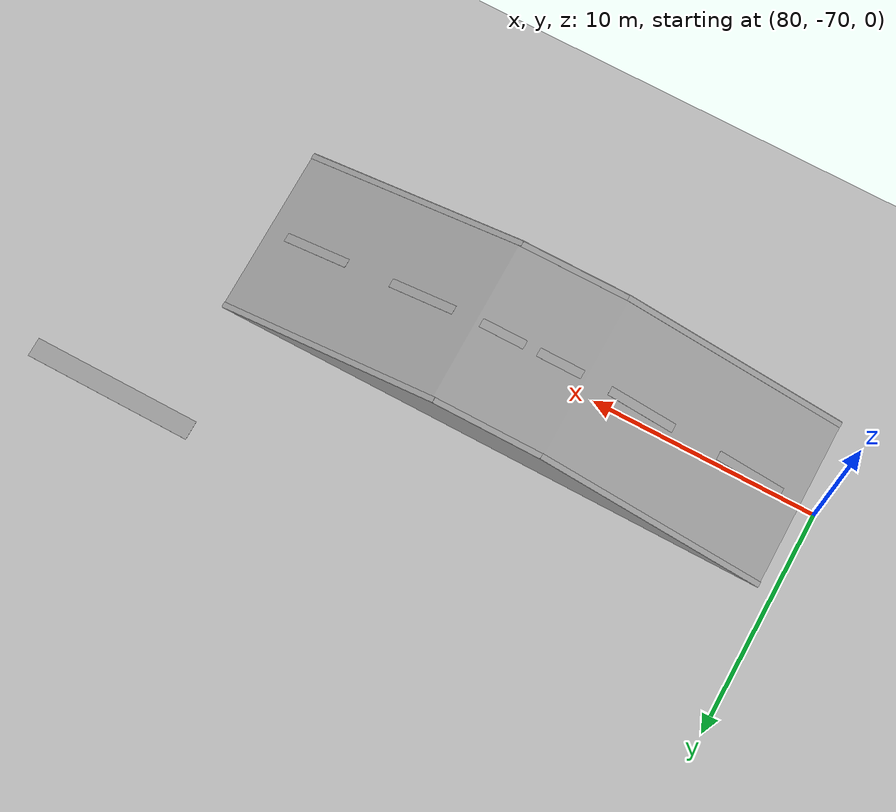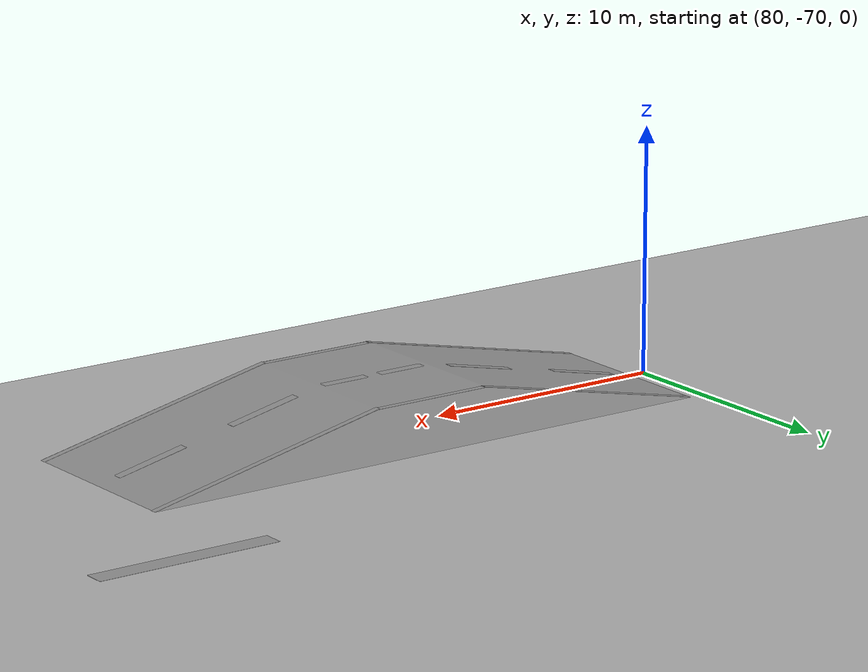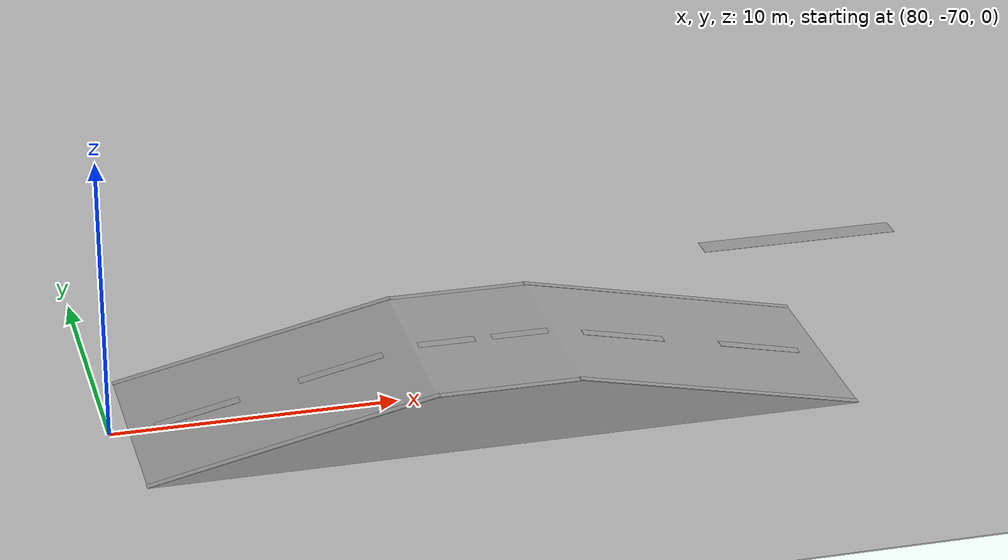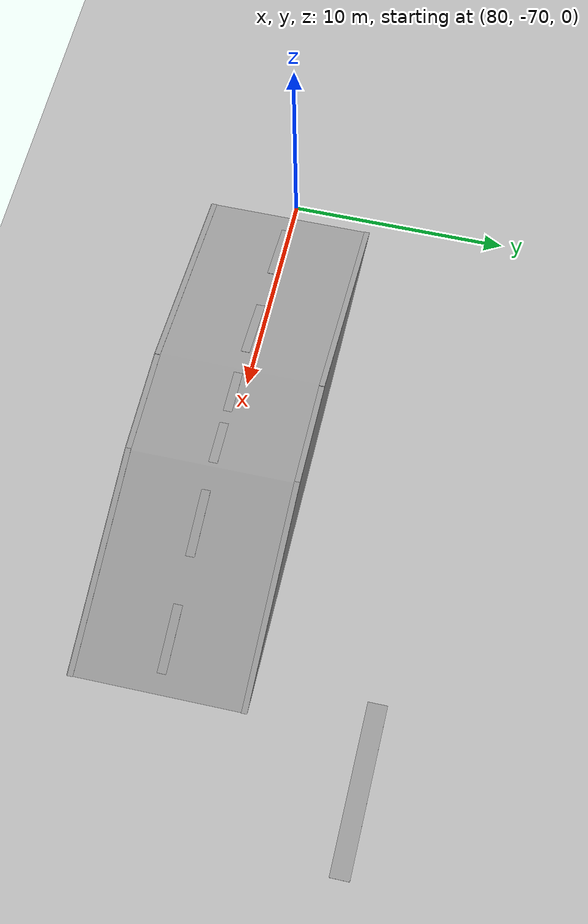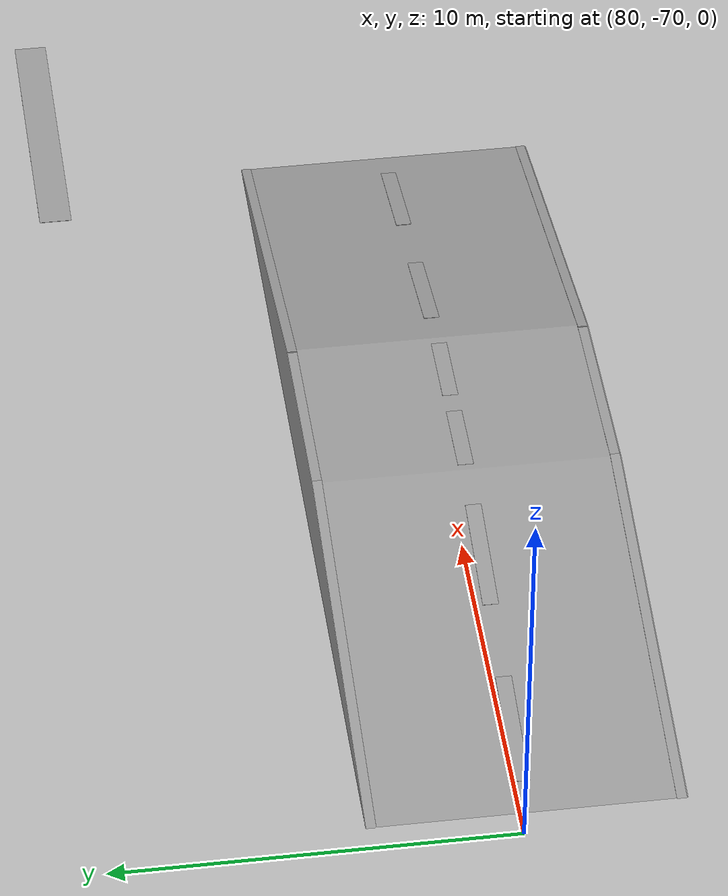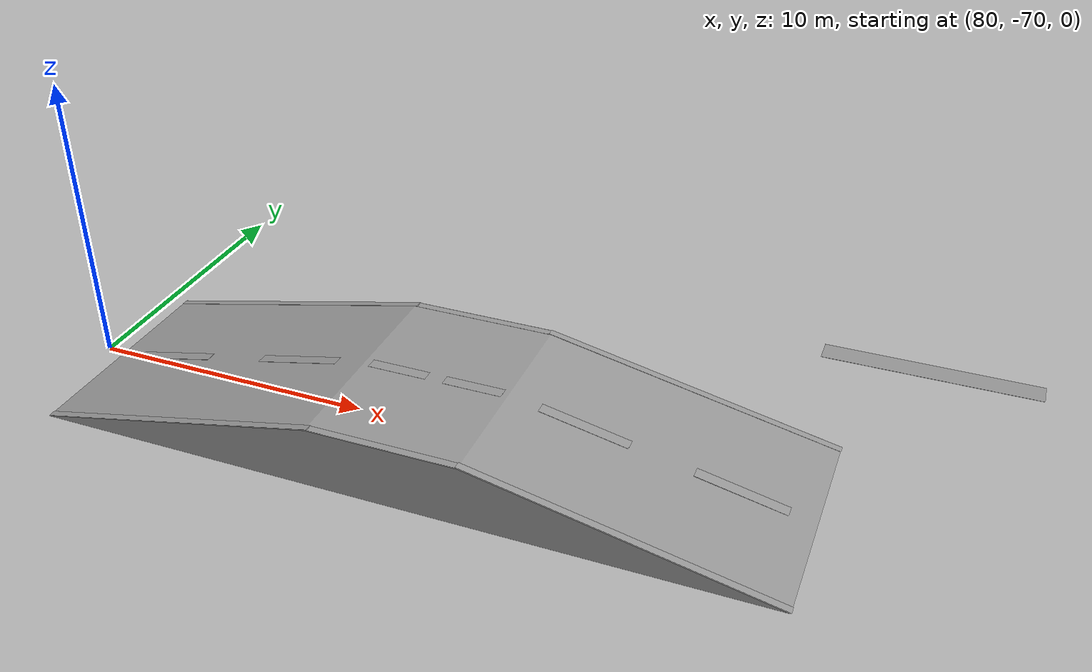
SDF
<sdf version="1.7">
 <world name="default">
  <model name="ground">
   <pose>75 -41.8 0 0 -0 1.57</pose>
   <static>1</static>
   <link name="ground">
    <collision name="ground_coll"><geometry><box><size>83.6 150 0.05</size></box></geometry></collision>
    <visual name="ground_vis">
     <geometry><box><size>83.6 150 0.05</size></box></geometry>
     <material>
      <script>
       <uri>/home/bluevery8/workspace/oom_ws/install/ros2_term_project/share/ros2_term_project/worlds/./course.material</uri>
       <name>course</name>
      </script>
     </material>
    </visual>
   </link>
  </model>
  <model name="Hill">
   <link name="hill_model">
    <inertial>
     <mass>100</mass>
     <inertia>
      <ixx>0.166667</ixx>
      <ixy>0</ixy>
      <ixz>0</ixz>
      <iyy>0.166667</iyy>
      <iyz>0</iyz>
      <izz>0.166667</izz>
     </inertia>
    </inertial>
    <pose>8e-06 -3.4e-05 -0.020001 0 -0 0</pose>
    <self_collide>1</self_collide>
    <gravity>0</gravity>
    <visual name="visual">
     <geometry>
      <mesh>
       <uri>/home/bluevery8/workspace/oom_ws/src/ros2_term_project/3dfile/언덕구간.stl</uri>
       <scale>0.1 0.26 0.2</scale>
      </mesh>
     </geometry>
     <material>
      <lighting>1</lighting>
      <script><uri>file://media/materials/scripts/gazebo.material</uri><name>Gazebo/Grey</name></script>
      <shader type="pixel"><normal_map>__default__</normal_map></shader>
      <ambient>0.3 0.3 0.3 1</ambient>
      <diffuse>0.7 0.7 0.7 1</diffuse>
      <specular>0.01 0.01 0.01 1</specular>
      <emissive>0 0 0 1</emissive>
     </material>
    </visual>
    <collision name="collision">
     <geometry>
      <mesh>
       <uri>/home/bluevery8/workspace/oom_ws/src/ros2_term_project/3dfile/언덕구간.stl</uri>
       <scale>0.1 0.26 0.2</scale>
      </mesh>
     </geometry>
     <surface>
      <friction>
       <ode><mu>1</mu><mu2>1</mu2><fdir1>0 0 0</fdir1><slip1>0</slip1><slip2>0</slip2></ode>
       <torsional>
        <coefficient>1</coefficient>
        <patch_radius>0</patch_radius>
        <surface_radius>0</surface_radius>
        <use_patch_radius>1</use_patch_radius>
        <ode><slip>0</slip></ode>
       </torsional>
      </friction>
      <bounce><restitution_coefficient>0</restitution_coefficient><threshold>1e+06</threshold></bounce>
      <contact>
       <collide_without_contact>0</collide_without_contact>
       <collide_without_contact_bitmask>1</collide_without_contact_bitmask>
       <collide_bitmask>1</collide_bitmask>
       <ode>
        <soft_cfm>0</soft_cfm>
        <soft_erp>0.2</soft_erp>
        <kp>1e+13</kp>
        <kd>1</kd>
        <max_vel>0.01</max_vel>
        <min_depth>0</min_depth>
       </ode>
       <bullet>
        <split_impulse>1</split_impulse>
        <split_impulse_penetration_threshold>-0.01</split_impulse_penetration_threshold>
        <soft_cfm>0</soft_cfm>
        <soft_erp>0.2</soft_erp>
        <kp>1e+13</kp>
        <kd>1</kd>
       </bullet>
      </contact>
     </surface>
    </collision>
   </link>
   <link name="hill_center_line_1">
    <inertial>
     <mass>1</mass>
     <inertia>
      <ixx>0.166667</ixx>
      <ixy>0</ixy>
      <ixz>0</ixz>
      <iyy>0.166667</iyy>
      <iyz>0</iyz>
      <izz>0.166667</izz>
     </inertia>
    </inertial>
    <pose>-4.5 -9.1 0.5 0 -0.212 0</pose>
    <self_collide>1</self_collide>
    <visual name="visual">
     <geometry><box><size>3 0.4 0.05</size></box></geometry>
     <material>
      <lighting>1</lighting>
      <script><uri>file://media/materials/scripts/gazebo.material</uri><name>Gazebo/Grey</name></script>
      <shader type="pixel"><normal_map>__default__</normal_map></shader>
      <ambient>1 1 1 1</ambient>
      <diffuse>1 1 1 1</diffuse>
      <specular>1 1 1 1</specular>
      <emissive>1 1 1 1</emissive>
     </material>
    </visual>
    <collision name="collision">
     <geometry><box><size>0 0 0</size></box></geometry>
     <surface>
      <friction>
       <ode><mu>1</mu><mu2>1</mu2><fdir1>0 0 0</fdir1><slip1>0</slip1><slip2>0</slip2></ode>
       <torsional>
        <coefficient>1</coefficient>
        <patch_radius>0</patch_radius>
        <surface_radius>0</surface_radius>
        <use_patch_radius>1</use_patch_radius>
        <ode><slip>0</slip></ode>
       </torsional>
      </friction>
      <bounce><restitution_coefficient>0</restitution_coefficient><threshold>1e+06</threshold></bounce>
      <contact>
       <collide_without_contact>0</collide_without_contact>
       <collide_without_contact_bitmask>1</collide_without_contact_bitmask>
       <collide_bitmask>1</collide_bitmask>
       <ode>
        <soft_cfm>0</soft_cfm>
        <soft_erp>0.2</soft_erp>
        <kp>1e+13</kp>
        <kd>1</kd>
        <max_vel>0.01</max_vel>
        <min_depth>0</min_depth>
       </ode>
       <bullet>
        <split_impulse>1</split_impulse>
        <split_impulse_penetration_threshold>-0.01</split_impulse_penetration_threshold>
        <soft_cfm>0</soft_cfm>
        <soft_erp>0.2</soft_erp>
        <kp>1e+13</kp>
        <kd>1</kd>
       </bullet>
      </contact>
     </surface>
    </collision>
   </link>
   <link name="hill_center_line_2">
    <inertial>
     <mass>1</mass>
     <inertia>
      <ixx>0.166667</ixx>
      <ixy>0</ixy>
      <ixz>0</ixz>
      <iyy>0.166667</iyy>
      <iyz>0</iyz>
      <izz>0.166667</izz>
     </inertia>
    </inertial>
    <pose>0.5 -9.1 1.57 0 -0.212 0</pose>
    <self_collide>1</self_collide>
    <visual name="visual">
     <geometry><box><size>3 0.4 0.05</size></box></geometry>
     <material>
      <lighting>1</lighting>
      <script><uri>file://media/materials/scripts/gazebo.material</uri><name>Gazebo/Grey</name></script>
      <shader type="pixel"><normal_map>__default__</normal_map></shader>
      <ambient>1 1 1 1</ambient>
      <diffuse>1 1 1 1</diffuse>
      <specular>1 1 1 1</specular>
      <emissive>1 1 1 1</emissive>
     </material>
    </visual>
    <collision name="collision">
     <geometry><box><size>0 0 0</size></box></geometry>
     <surface>
      <friction>
       <ode><mu>1</mu><mu2>1</mu2><fdir1>0 0 0</fdir1><slip1>0</slip1><slip2>0</slip2></ode>
       <torsional>
        <coefficient>1</coefficient>
        <patch_radius>0</patch_radius>
        <surface_radius>0</surface_radius>
        <use_patch_radius>1</use_patch_radius>
        <ode><slip>0</slip></ode>
       </torsional>
      </friction>
      <bounce><restitution_coefficient>0</restitution_coefficient><threshold>1e+06</threshold></bounce>
      <contact>
       <collide_without_contact>0</collide_without_contact>
       <collide_without_contact_bitmask>1</collide_without_contact_bitmask>
       <collide_bitmask>1</collide_bitmask>
       <ode>
        <soft_cfm>0</soft_cfm>
        <soft_erp>0.2</soft_erp>
        <kp>1e+13</kp>
        <kd>1</kd>
        <max_vel>0.01</max_vel>
        <min_depth>0</min_depth>
       </ode>
       <bullet>
        <split_impulse>1</split_impulse>
        <split_impulse_penetration_threshold>-0.01</split_impulse_penetration_threshold>
        <soft_cfm>0</soft_cfm>
        <soft_erp>0.2</soft_erp>
        <kp>1e+13</kp>
        <kd>1</kd>
       </bullet>
      </contact>
     </surface>
    </collision>
   </link>
   <link name="hill_center_line_down_1">
    <inertial>
     <mass>1</mass>
     <inertia>
      <ixx>0.166667</ixx>
      <ixy>0</ixy>
      <ixz>0</ixz>
      <iyy>0.166667</iyy>
      <iyz>0</iyz>
      <izz>0.166667</izz>
     </inertia>
    </inertial>
    <pose>10.5 -9.1 1.57 0 0.212 0</pose>
    <self_collide>1</self_collide>
    <visual name="visual">
     <geometry><box><size>3 0.4 0.05</size></box></geometry>
     <material>
      <lighting>1</lighting>
      <script><uri>file://media/materials/scripts/gazebo.material</uri><name>Gazebo/Grey</name></script>
      <shader type="pixel"><normal_map>__default__</normal_map></shader>
      <ambient>1 1 1 1</ambient>
      <diffuse>1 1 1 1</diffuse>
      <specular>1 1 1 1</specular>
      <emissive>1 1 1 1</emissive>
     </material>
    </visual>
    <collision name="collision">
     <geometry><box><size>0 0 0</size></box></geometry>
     <surface>
      <friction>
       <ode><mu>1</mu><mu2>1</mu2><fdir1>0 0 0</fdir1><slip1>0</slip1><slip2>0</slip2></ode>
       <torsional>
        <coefficient>1</coefficient>
        <patch_radius>0</patch_radius>
        <surface_radius>0</surface_radius>
        <use_patch_radius>1</use_patch_radius>
        <ode><slip>0</slip></ode>
       </torsional>
      </friction>
      <bounce><restitution_coefficient>0</restitution_coefficient><threshold>1e+06</threshold></bounce>
      <contact>
       <collide_without_contact>0</collide_without_contact>
       <collide_without_contact_bitmask>1</collide_without_contact_bitmask>
       <collide_bitmask>1</collide_bitmask>
       <ode>
        <soft_cfm>0</soft_cfm>
        <soft_erp>0.2</soft_erp>
        <kp>1e+13</kp>
        <kd>1</kd>
        <max_vel>0.01</max_vel>
        <min_depth>0</min_depth>
       </ode>
       <bullet>
        <split_impulse>1</split_impulse>
        <split_impulse_penetration_threshold>-0.01</split_impulse_penetration_threshold>
        <soft_cfm>0</soft_cfm>
        <soft_erp>0.2</soft_erp>
        <kp>1e+13</kp>
        <kd>1</kd>
       </bullet>
      </contact>
     </surface>
    </collision>
   </link>
   <link name="hill_center_line_down_2">
    <inertial>
     <mass>1</mass>
     <inertia>
      <ixx>0.166667</ixx>
      <ixy>0</ixy>
      <ixz>0</ixz>
      <iyy>0.166667</iyy>
      <iyz>0</iyz>
      <izz>0.166667</izz>
     </inertia>
    </inertial>
    <pose>15.5 -9.1 0.5 0 0.215 0</pose>
    <self_collide>1</self_collide>
    <visual name="visual">
     <geometry><box><size>3 0.4 0.05</size></box></geometry>
     <material>
      <lighting>1</lighting>
      <script><uri>file://media/materials/scripts/gazebo.material</uri><name>Gazebo/Grey</name></script>
      <shader type="pixel"><normal_map>__default__</normal_map></shader>
      <ambient>1 1 1 1</ambient>
      <diffuse>1 1 1 1</diffuse>
      <specular>1 1 1 1</specular>
      <emissive>1 1 1 1</emissive>
     </material>
    </visual>
    <collision name="collision">
     <geometry><box><size>0 0 0</size></box></geometry>
     <surface>
      <friction>
       <ode><mu>1</mu><mu2>1</mu2><fdir1>0 0 0</fdir1><slip1>0</slip1><slip2>0</slip2></ode>
       <torsional>
        <coefficient>1</coefficient>
        <patch_radius>0</patch_radius>
        <surface_radius>0</surface_radius>
        <use_patch_radius>1</use_patch_radius>
        <ode><slip>0</slip></ode>
       </torsional>
      </friction>
      <bounce><restitution_coefficient>0</restitution_coefficient><threshold>1e+06</threshold></bounce>
      <contact>
       <collide_without_contact>0</collide_without_contact>
       <collide_without_contact_bitmask>1</collide_without_contact_bitmask>
       <collide_bitmask>1</collide_bitmask>
       <ode>
        <soft_cfm>0</soft_cfm>
        <soft_erp>0.2</soft_erp>
        <kp>1e+13</kp>
        <kd>1</kd>
        <max_vel>0.01</max_vel>
        <min_depth>0</min_depth>
       </ode>
       <bullet>
        <split_impulse>1</split_impulse>
        <split_impulse_penetration_threshold>-0.01</split_impulse_penetration_threshold>
        <soft_cfm>0</soft_cfm>
        <soft_erp>0.2</soft_erp>
        <kp>1e+13</kp>
        <kd>1</kd>
       </bullet>
      </contact>
     </surface>
    </collision>
   </link>
   <link name="hill_side_line_1">
    <inertial>
     <mass>40</mass>
     <inertia><ixx>6.66667</ixx><ixy>0</ixy><ixz>0</ixz><iyy>6.66667</iyy><iyz>0</iyz><izz>6.66667</izz></inertia>
    </inertial>
    <pose>-2.3 -5.33409 0.97 0 -0.212 0</pose>
    <self_collide>1</self_collide>
    <visual name="visual">
     <geometry><box><size>11 0.25 0.05</size></box></geometry>
     <material>
      <lighting>1</lighting>
      <script><uri>file://media/materials/scripts/gazebo.material</uri><name>Gazebo/Grey</name></script>
      <shader type="pixel"><normal_map>__default__</normal_map></shader>
      <ambient>1 1 1 1</ambient>
      <diffuse>1 1 1 1</diffuse>
      <specular>1 1 1 1</specular>
      <emissive>1 1 1 1</emissive>
     </material>
    </visual>
    <collision name="collision">
     <geometry><box><size>0 0 0</size></box></geometry>
     <surface>
      <friction>
       <ode><mu>1</mu><mu2>1</mu2><fdir1>0 0 0</fdir1><slip1>0</slip1><slip2>0</slip2></ode>
       <torsional>
        <coefficient>1</coefficient>
        <patch_radius>0</patch_radius>
        <surface_radius>0</surface_radius>
        <use_patch_radius>1</use_patch_radius>
        <ode><slip>0</slip></ode>
       </torsional>
      </friction>
      <bounce><restitution_coefficient>0</restitution_coefficient><threshold>1e+06</threshold></bounce>
      <contact>
       <collide_without_contact>0</collide_without_contact>
       <collide_without_contact_bitmask>1</collide_without_contact_bitmask>
       <collide_bitmask>1</collide_bitmask>
       <ode>
        <soft_cfm>0</soft_cfm>
        <soft_erp>0.2</soft_erp>
        <kp>1e+13</kp>
        <kd>1</kd>
        <max_vel>0.01</max_vel>
        <min_depth>0</min_depth>
       </ode>
       <bullet>
        <split_impulse>1</split_impulse>
        <split_impulse_penetration_threshold>-0.01</split_impulse_penetration_threshold>
        <soft_cfm>0</soft_cfm>
        <soft_erp>0.2</soft_erp>
        <kp>1e+13</kp>
        <kd>1</kd>
       </bullet>
      </contact>
     </surface>
    </collision>
   </link>
   <link name="hill_side_line_2">
    <inertial>
     <mass>40</mass>
     <inertia><ixx>6.66667</ixx><ixy>0</ixy><ixz>0</ixz><iyy>6.66667</iyy><iyz>0</iyz><izz>6.66667</izz></inertia>
    </inertial>
    <pose>-2.3 -12.85 0.97 0 -0.212 0</pose>
    <self_collide>1</self_collide>
    <visual name="visual_0">
     <geometry><box><size>11 0.25 0.05</size></box></geometry>
     <material>
      <lighting>1</lighting>
      <script><uri>file://media/materials/scripts/gazebo.material</uri><name>Gazebo/Grey</name></script>
      <shader type="pixel"><normal_map>__default__</normal_map></shader>
      <ambient>1 1 1 1</ambient>
      <diffuse>1 1 1 1</diffuse>
      <specular>1 1 1 1</specular>
      <emissive>1 1 1 1</emissive>
     </material>
    </visual>
    <collision name="collision">
     <geometry><box><size>0 0 0</size></box></geometry>
     <surface>
      <friction>
       <ode><mu>1</mu><mu2>1</mu2><fdir1>0 0 0</fdir1><slip1>0</slip1><slip2>0</slip2></ode>
       <torsional>
        <coefficient>1</coefficient>
        <patch_radius>0</patch_radius>
        <surface_radius>0</surface_radius>
        <use_patch_radius>1</use_patch_radius>
        <ode><slip>0</slip></ode>
       </torsional>
      </friction>
      <bounce><restitution_coefficient>0</restitution_coefficient><threshold>1e+06</threshold></bounce>
      <contact>
       <collide_without_contact>0</collide_without_contact>
       <collide_without_contact_bitmask>1</collide_without_contact_bitmask>
       <collide_bitmask>1</collide_bitmask>
       <ode>
        <soft_cfm>0</soft_cfm>
        <soft_erp>0.2</soft_erp>
        <kp>1e+13</kp>
        <kd>1</kd>
        <max_vel>0.01</max_vel>
        <min_depth>0</min_depth>
       </ode>
       <bullet>
        <split_impulse>1</split_impulse>
        <split_impulse_penetration_threshold>-0.01</split_impulse_penetration_threshold>
        <soft_cfm>0</soft_cfm>
        <soft_erp>0.2</soft_erp>
        <kp>1e+13</kp>
        <kd>1</kd>
       </bullet>
      </contact>
     </surface>
    </collision>
   </link>
   <link name="hill_side_line_down_1">
    <inertial>
     <mass>40</mass>
     <inertia><ixx>6.66667</ixx><ixy>0</ixy><ixz>0</ixz><iyy>6.66667</iyy><iyz>0</iyz><izz>6.66667</izz></inertia>
    </inertial>
    <pose>13.3 -5.33409 0.97 0 0.212 0</pose>
    <self_collide>1</self_collide>
    <visual name="visual">
     <geometry><box><size>11 0.25 0.05</size></box></geometry>
     <material>
      <lighting>1</lighting>
      <script><uri>file://media/materials/scripts/gazebo.material</uri><name>Gazebo/Grey</name></script>
      <shader type="pixel"><normal_map>__default__</normal_map></shader>
      <ambient>1 1 1 1</ambient>
      <diffuse>1 1 1 1</diffuse>
      <specular>1 1 1 1</specular>
      <emissive>1 1 1 1</emissive>
     </material>
    </visual>
    <collision name="collision">
     <geometry><box><size>0 0 0</size></box></geometry>
     <surface>
      <friction>
       <ode><mu>1</mu><mu2>1</mu2><fdir1>0 0 0</fdir1><slip1>0</slip1><slip2>0</slip2></ode>
       <torsional>
        <coefficient>1</coefficient>
        <patch_radius>0</patch_radius>
        <surface_radius>0</surface_radius>
        <use_patch_radius>1</use_patch_radius>
        <ode><slip>0</slip></ode>
       </torsional>
      </friction>
      <bounce><restitution_coefficient>0</restitution_coefficient><threshold>1e+06</threshold></bounce>
      <contact>
       <collide_without_contact>0</collide_without_contact>
       <collide_without_contact_bitmask>1</collide_without_contact_bitmask>
       <collide_bitmask>1</collide_bitmask>
       <ode>
        <soft_cfm>0</soft_cfm>
        <soft_erp>0.2</soft_erp>
        <kp>1e+13</kp>
        <kd>1</kd>
        <max_vel>0.01</max_vel>
        <min_depth>0</min_depth>
       </ode>
       <bullet>
        <split_impulse>1</split_impulse>
        <split_impulse_penetration_threshold>-0.01</split_impulse_penetration_threshold>
        <soft_cfm>0</soft_cfm>
        <soft_erp>0.2</soft_erp>
        <kp>1e+13</kp>
        <kd>1</kd>
       </bullet>
      </contact>
     </surface>
    </collision>
   </link>
   <link name="hill_side_line_down_2">
    <inertial>
     <mass>40</mass>
     <inertia><ixx>6.66667</ixx><ixy>0</ixy><ixz>0</ixz><iyy>6.66667</iyy><iyz>0</iyz><izz>6.66667</izz></inertia>
    </inertial>
    <pose>13.3 -12.85 0.97 0 0.212 0</pose>
    <self_collide>1</self_collide>
    <visual name="visual_0">
     <geometry><box><size>11 0.25 0.05</size></box></geometry>
     <material>
      <lighting>1</lighting>
      <script><uri>file://media/materials/scripts/gazebo.material</uri><name>Gazebo/Grey</name></script>
      <shader type="pixel"><normal_map>__default__</normal_map></shader>
      <ambient>1 1 1 1</ambient>
      <diffuse>1 1 1 1</diffuse>
      <specular>1 1 1 1</specular>
      <emissive>1 1 1 1</emissive>
     </material>
    </visual>
    <collision name="collision">
     <geometry><box><size>0 0 0</size></box></geometry>
     <surface>
      <friction>
       <ode><mu>1</mu><mu2>1</mu2><fdir1>0 0 0</fdir1><slip1>0</slip1><slip2>0</slip2></ode>
       <torsional>
        <coefficient>1</coefficient>
        <patch_radius>0</patch_radius>
        <surface_radius>0</surface_radius>
        <use_patch_radius>1</use_patch_radius>
        <ode><slip>0</slip></ode>
       </torsional>
      </friction>
      <bounce><restitution_coefficient>0</restitution_coefficient><threshold>1e+06</threshold></bounce>
      <contact>
       <collide_without_contact>0</collide_without_contact>
       <collide_without_contact_bitmask>1</collide_without_contact_bitmask>
       <collide_bitmask>1</collide_bitmask>
       <ode>
        <soft_cfm>0</soft_cfm>
        <soft_erp>0.2</soft_erp>
        <kp>1e+13</kp>
        <kd>1</kd>
        <max_vel>0.01</max_vel>
        <min_depth>0</min_depth>
       </ode>
       <bullet>
        <split_impulse>1</split_impulse>
        <split_impulse_penetration_threshold>-0.01</split_impulse_penetration_threshold>
        <soft_cfm>0</soft_cfm>
        <soft_erp>0.2</soft_erp>
        <kp>1e+13</kp>
        <kd>1</kd>
       </bullet>
      </contact>
     </surface>
    </collision>
   </link>
   <link name="hill_top_center_line_1">
    <inertial>
     <mass>1</mass>
     <inertia>
      <ixx>0.166667</ixx>
      <ixy>0</ixy>
      <ixz>0</ixz>
      <iyy>0.166667</iyy>
      <iyz>0</iyz>
      <izz>0.166667</izz>
     </inertia>
    </inertial>
    <pose>4.2 -9.1 2.1 0 -0 0</pose>
    <self_collide>1</self_collide>
    <visual name="visual">
     <geometry><box><size>2 0.4 0.05</size></box></geometry>
     <material>
      <lighting>1</lighting>
      <script><uri>file://media/materials/scripts/gazebo.material</uri><name>Gazebo/Grey</name></script>
      <shader type="pixel"><normal_map>__default__</normal_map></shader>
      <ambient>1 1 1 1</ambient>
      <diffuse>1 1 1 1</diffuse>
      <specular>1 1 1 1</specular>
      <emissive>1 1 1 1</emissive>
     </material>
    </visual>
    <collision name="collision">
     <geometry><box><size>0 0 0</size></box></geometry>
     <surface>
      <friction>
       <ode><mu>1</mu><mu2>1</mu2><fdir1>0 0 0</fdir1><slip1>0</slip1><slip2>0</slip2></ode>
       <torsional>
        <coefficient>1</coefficient>
        <patch_radius>0</patch_radius>
        <surface_radius>0</surface_radius>
        <use_patch_radius>1</use_patch_radius>
        <ode><slip>0</slip></ode>
       </torsional>
      </friction>
      <bounce><restitution_coefficient>0</restitution_coefficient><threshold>1e+06</threshold></bounce>
      <contact>
       <collide_without_contact>0</collide_without_contact>
       <collide_without_contact_bitmask>1</collide_without_contact_bitmask>
       <collide_bitmask>1</collide_bitmask>
       <ode>
        <soft_cfm>0</soft_cfm>
        <soft_erp>0.2</soft_erp>
        <kp>1e+13</kp>
        <kd>1</kd>
        <max_vel>0.01</max_vel>
        <min_depth>0</min_depth>
       </ode>
       <bullet>
        <split_impulse>1</split_impulse>
        <split_impulse_penetration_threshold>-0.01</split_impulse_penetration_threshold>
        <soft_cfm>0</soft_cfm>
        <soft_erp>0.2</soft_erp>
        <kp>1e+13</kp>
        <kd>1</kd>
       </bullet>
      </contact>
     </surface>
    </collision>
   </link>
   <link name="hill_top_center_line_2">
    <inertial>
     <mass>1</mass>
     <inertia>
      <ixx>0.166667</ixx>
      <ixy>0</ixy>
      <ixz>0</ixz>
      <iyy>0.166667</iyy>
      <iyz>0</iyz>
      <izz>0.166667</izz>
     </inertia>
    </inertial>
    <pose>6.8 -9.1 2.1 0 -0 0</pose>
    <self_collide>1</self_collide>
    <visual name="visual">
     <geometry><box><size>2 0.4 0.05</size></box></geometry>
     <material>
      <lighting>1</lighting>
      <script><uri>file://media/materials/scripts/gazebo.material</uri><name>Gazebo/Grey</name></script>
      <shader type="pixel"><normal_map>__default__</normal_map></shader>
      <ambient>1 1 1 1</ambient>
      <diffuse>1 1 1 1</diffuse>
      <specular>1 1 1 1</specular>
      <emissive>1 1 1 1</emissive>
     </material>
    </visual>
    <collision name="collision">
     <geometry><box><size>0 0 0</size></box></geometry>
     <surface>
      <friction>
       <ode><mu>1</mu><mu2>1</mu2><fdir1>0 0 0</fdir1><slip1>0</slip1><slip2>0</slip2></ode>
       <torsional>
        <coefficient>1</coefficient>
        <patch_radius>0</patch_radius>
        <surface_radius>0</surface_radius>
        <use_patch_radius>1</use_patch_radius>
        <ode><slip>0</slip></ode>
       </torsional>
      </friction>
      <bounce><restitution_coefficient>0</restitution_coefficient><threshold>1e+06</threshold></bounce>
      <contact>
       <collide_without_contact>0</collide_without_contact>
       <collide_without_contact_bitmask>1</collide_without_contact_bitmask>
       <collide_bitmask>1</collide_bitmask>
       <ode>
        <soft_cfm>0</soft_cfm>
        <soft_erp>0.2</soft_erp>
        <kp>1e+13</kp>
        <kd>1</kd>
        <max_vel>0.01</max_vel>
        <min_depth>0</min_depth>
       </ode>
       <bullet>
        <split_impulse>1</split_impulse>
        <split_impulse_penetration_threshold>-0.01</split_impulse_penetration_threshold>
        <soft_cfm>0</soft_cfm>
        <soft_erp>0.2</soft_erp>
        <kp>1e+13</kp>
        <kd>1</kd>
       </bullet>
      </contact>
     </surface>
    </collision>
   </link>
   <link name="hill_top_left_line_1">
    <inertial>
     <mass>1</mass>
     <inertia>
      <ixx>0.166667</ixx>
      <ixy>0</ixy>
      <ixz>0</ixz>
      <iyy>0.166667</iyy>
      <iyz>0</iyz>
      <izz>0.166667</izz>
     </inertia>
    </inertial>
    <pose>5.5 -5.33404 2.1 0 -0 0</pose>
    <self_collide>1</self_collide>
    <visual name="visual">
     <geometry><box><size>5 0.25 0.05</size></box></geometry>
     <material>
      <lighting>1</lighting>
      <script><uri>file://media/materials/scripts/gazebo.material</uri><name>Gazebo/Grey</name></script>
      <shader type="pixel"><normal_map>__default__</normal_map></shader>
      <ambient>1 1 1 1</ambient>
      <diffuse>1 1 1 1</diffuse>
      <specular>1 1 1 1</specular>
      <emissive>1 1 1 1</emissive>
     </material>
    </visual>
    <collision name="collision">
     <geometry><box><size>0 0 0</size></box></geometry>
     <surface>
      <friction>
       <ode><mu>1</mu><mu2>1</mu2><fdir1>0 0 0</fdir1><slip1>0</slip1><slip2>0</slip2></ode>
       <torsional>
        <coefficient>1</coefficient>
        <patch_radius>0</patch_radius>
        <surface_radius>0</surface_radius>
        <use_patch_radius>1</use_patch_radius>
        <ode><slip>0</slip></ode>
       </torsional>
      </friction>
      <bounce><restitution_coefficient>0</restitution_coefficient><threshold>1e+06</threshold></bounce>
      <contact>
       <collide_without_contact>0</collide_without_contact>
       <collide_without_contact_bitmask>1</collide_without_contact_bitmask>
       <collide_bitmask>1</collide_bitmask>
       <ode>
        <soft_cfm>0</soft_cfm>
        <soft_erp>0.2</soft_erp>
        <kp>1e+13</kp>
        <kd>1</kd>
        <max_vel>0.01</max_vel>
        <min_depth>0</min_depth>
       </ode>
       <bullet>
        <split_impulse>1</split_impulse>
        <split_impulse_penetration_threshold>-0.01</split_impulse_penetration_threshold>
        <soft_cfm>0</soft_cfm>
        <soft_erp>0.2</soft_erp>
        <kp>1e+13</kp>
        <kd>1</kd>
       </bullet>
      </contact>
     </surface>
    </collision>
   </link>
   <link name="hill_top_right_line_1">
    <inertial>
     <mass>1</mass>
     <inertia>
      <ixx>0.166667</ixx>
      <ixy>0</ixy>
      <ixz>0</ixz>
      <iyy>0.166667</iyy>
      <iyz>0</iyz>
      <izz>0.166667</izz>
     </inertia>
    </inertial>
    <pose>5.5 -12.85 2.1 0 -0 0</pose>
    <self_collide>1</self_collide>
    <visual name="visual">
     <geometry><box><size>5 0.25 0.05</size></box></geometry>
     <material>
      <lighting>1</lighting>
      <script><uri>file://media/materials/scripts/gazebo.material</uri><name>Gazebo/Grey</name></script>
      <shader type="pixel"><normal_map>__default__</normal_map></shader>
      <ambient>1 1 1 1</ambient>
      <diffuse>1 1 1 1</diffuse>
      <specular>1 1 1 1</specular>
      <emissive>1 1 1 1</emissive>
     </material>
    </visual>
    <collision name="collision">
     <geometry><box><size>0 0 0</size></box></geometry>
     <surface>
      <friction>
       <ode><mu>1</mu><mu2>1</mu2><fdir1>0 0 0</fdir1><slip1>0</slip1><slip2>0</slip2></ode>
       <torsional>
        <coefficient>1</coefficient>
        <patch_radius>0</patch_radius>
        <surface_radius>0</surface_radius>
        <use_patch_radius>1</use_patch_radius>
        <ode><slip>0</slip></ode>
       </torsional>
      </friction>
      <bounce><restitution_coefficient>0</restitution_coefficient><threshold>1e+06</threshold></bounce>
      <contact>
       <collide_without_contact>0</collide_without_contact>
       <collide_without_contact_bitmask>1</collide_without_contact_bitmask>
       <collide_bitmask>1</collide_bitmask>
       <ode>
        <soft_cfm>0</soft_cfm>
        <soft_erp>0.2</soft_erp>
        <kp>1e+13</kp>
        <kd>1</kd>
        <max_vel>0.01</max_vel>
        <min_depth>0</min_depth>
       </ode>
       <bullet>
        <split_impulse>1</split_impulse>
        <split_impulse_penetration_threshold>-0.01</split_impulse_penetration_threshold>
        <soft_cfm>0</soft_cfm>
        <soft_erp>0.2</soft_erp>
        <kp>1e+13</kp>
        <kd>1</kd>
       </bullet>
      </contact>
     </surface>
    </collision>
   </link>
   <link name="stop_line">
    <pose>20 4e-06 0.100001 0 -0 0</pose>
    <self_collide>1</self_collide>
    <inertial>
     <inertia>
      <ixx>0.0336667</ixx>
      <ixy>0</ixy>
      <ixz>0</ixz>
      <iyy>0.133667</iyy>
      <iyz>0</iyz>
      <izz>0.166667</izz>
     </inertia>
     <mass>40</mass>
    </inertial>
    <visual name="visual">
     <geometry><box><size>7.5 0.85 0.01</size></box></geometry>
     <material>
      <script><uri>file://media/materials/scripts/gazebo.material</uri><name>Gazebo/Grey</name></script>
      <ambient>1 1 1 1</ambient>
      <diffuse>1 1 1 1</diffuse>
      <specular>0.01 0.01 0.01 1</specular>
      <emissive>0 0 0 1</emissive>
      <shader type="pixel"><normal_map>__default__</normal_map></shader>
     </material>
    </visual>
    <collision name="collision">
     <geometry><box><size>0 0 0</size></box></geometry>
     <surface>
      <friction>
       <ode><mu>1</mu><mu2>1</mu2><fdir1>0 0 0</fdir1><slip1>0</slip1><slip2>0</slip2></ode>
       <torsional>
        <coefficient>1</coefficient>
        <patch_radius>0</patch_radius>
        <surface_radius>0</surface_radius>
        <use_patch_radius>1</use_patch_radius>
        <ode><slip>0</slip></ode>
       </torsional>
      </friction>
      <bounce><restitution_coefficient>0</restitution_coefficient><threshold>1e+06</threshold></bounce>
      <contact>
       <collide_without_contact>0</collide_without_contact>
       <collide_without_contact_bitmask>1</collide_without_contact_bitmask>
       <collide_bitmask>1</collide_bitmask>
       <ode>
        <soft_cfm>0</soft_cfm>
        <soft_erp>0.2</soft_erp>
        <kp>1e+13</kp>
        <kd>1</kd>
        <max_vel>0.01</max_vel>
        <min_depth>0</min_depth>
       </ode>
       <bullet>
        <split_impulse>1</split_impulse>
        <split_impulse_penetration_threshold>-0.01</split_impulse_penetration_threshold>
        <soft_cfm>0</soft_cfm>
        <soft_erp>0.2</soft_erp>
        <kp>1e+13</kp>
        <kd>1</kd>
       </bullet>
      </contact>
     </surface>
    </collision>
   </link>
   <static>1</static>
   <pose>87.4903 -61.0632 0.01 0 -0 0</pose>
  </model>
 </world>
</sdf>
